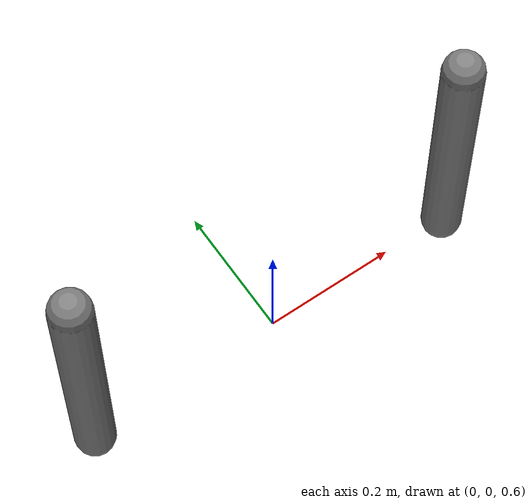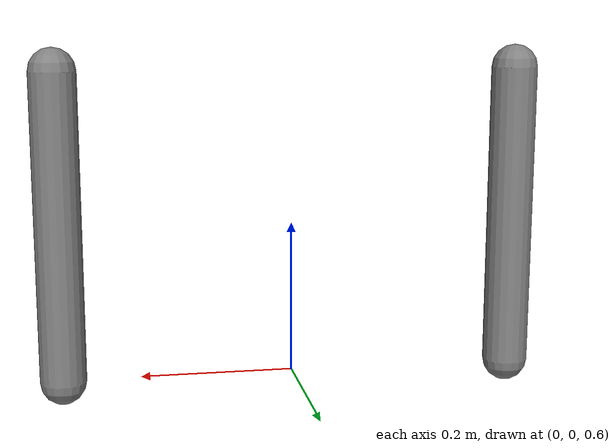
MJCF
<mujoco model="fixed-tendon">
  <option gravity="0 0 -9.81" timestep="0.002"/>
  <compiler angle="radian"/>
  <worldbody>
    <body name="a" pos="-0.3 0 1">
      <joint name="j_a" type="hinge" axis="0 1 0"/>
      <geom type="capsule" size="0.03" fromto="0 0 0 0 0 -0.4" mass="0.5"/>
    </body>
    <body name="b" pos="0.3 0 1">
      <joint name="j_b" type="hinge" axis="0 1 0"/>
      <geom type="capsule" size="0.03" fromto="0 0 0 0 0 -0.4" mass="0.5"/>
    </body>
  </worldbody>
  <tendon>
    <fixed name="t1">
      <joint joint="j_a" coef="1.0"/>
      <joint joint="j_b" coef="-0.5"/>
    </fixed>
  </tendon>
  <sensor>
    <tendonpos name="tp" tendon="t1"/>
    <tendonvel name="tv" tendon="t1"/>
  </sensor>
</mujoco>
